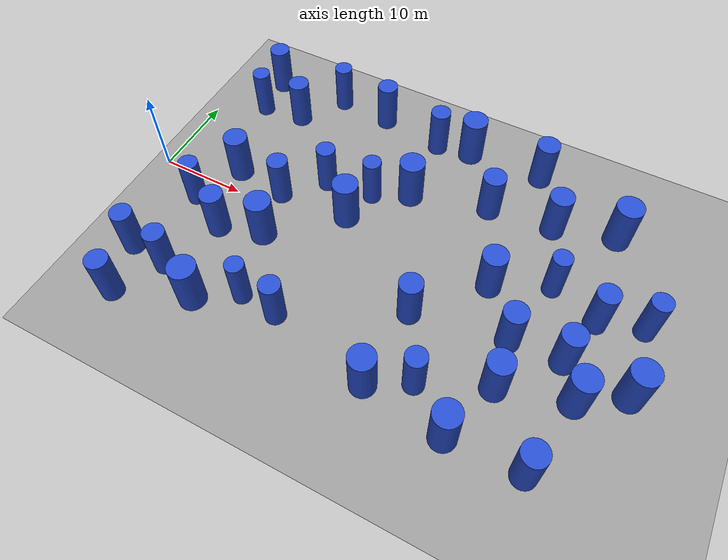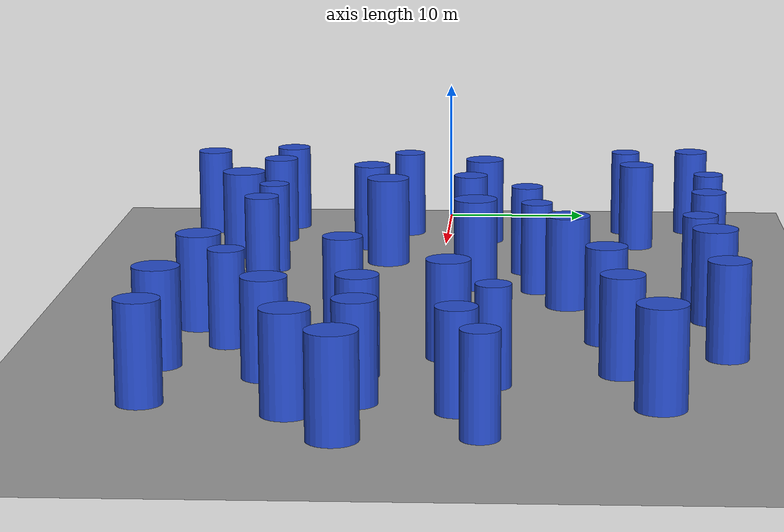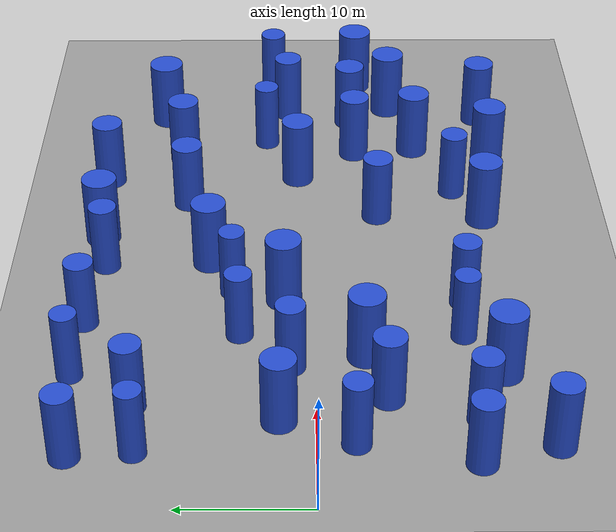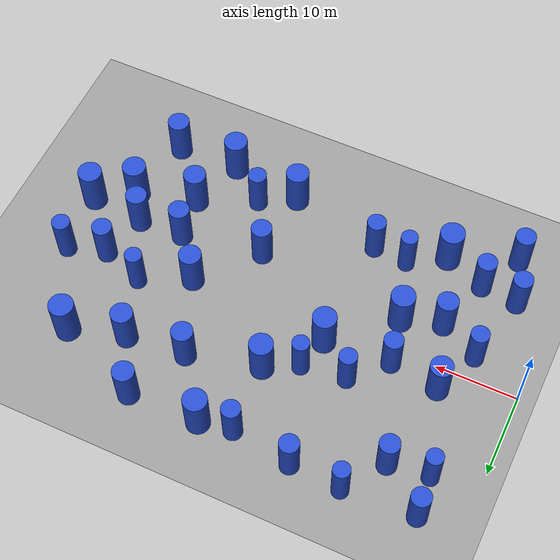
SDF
<sdf version="1.7">
 <world name="default">
  <model name="ground_plane_map">
   <static>1</static>
   <link name="link">
    <collision name="collision">
     <geometry><plane><normal>0 0 1</normal><size>110 50</size></plane></geometry>
     <surface>
      <contact><collide_without_contact>1</collide_without_contact></contact>
      <friction><ode><mu>100</mu><mu2>50</mu2></ode></friction>
     </surface>
    </collision>
    <visual name="visual">
     <cast_shadows>0</cast_shadows>
     <geometry><plane><normal>0 0 1</normal><size>110 50</size></plane></geometry>
     <material>
      <script><uri>file://media/materials/scripts/gazebo.material</uri><name>Gazebo/Grey</name></script>
     </material>
    </visual>
   </link>
   <pose>53 0 0 0 -0 0</pose>
  </model>
  <model name="0">
   <static>1</static>
   <link name="link">
    <inertial>
     <mass>2</mass>
     <inertia><ixx>6.95079</ixx><ixy>0</ixy><ixz>0</ixz><iyy>6.95079</iyy><iyz>0</iyz><izz>1.90158</izz></inertia>
    </inertial>
    <collision name="collision">
     <geometry><cylinder><length>6</length><radius>1.37898</radius></cylinder></geometry>
     <surface><contact><collide_without_contact>1</collide_without_contact></contact></surface>
    </collision>
    <visual name="visual">
     <geometry><cylinder><length>6</length><radius>1.37898</radius></cylinder></geometry>
     <material>
      <script><uri>file://media/materials/scripts/gazebo.material</uri><name>Gazebo/Blue</name></script>
     </material>
    </visual>
    <gravity>0</gravity>
   </link>
   <pose>45.2762 -8.97843 3 0 -0 0</pose>
  </model>
  <model name="6">
   <static>1</static>
   <link name="link">
    <inertial>
     <mass>2</mass>
     <inertia><ixx>6.55162</ixx><ixy>0</ixy><ixz>0</ixz><iyy>6.55162</iyy><iyz>0</iyz><izz>1.10324</izz></inertia>
    </inertial>
    <collision name="collision">
     <geometry><cylinder><length>6</length><radius>1.05035</radius></cylinder></geometry>
     <surface><contact><collide_without_contact>1</collide_without_contact></contact></surface>
    </collision>
    <visual name="visual">
     <geometry><cylinder><length>6</length><radius>1.05035</radius></cylinder></geometry>
     <material>
      <script><uri>file://media/materials/scripts/gazebo.material</uri><name>Gazebo/Blue</name></script>
     </material>
    </visual>
    <gravity>0</gravity>
   </link>
   <pose>46.5555 4.20254 3 0 -0 0</pose>
  </model>
  <model name="7">
   <static>1</static>
   <link name="link">
    <inertial>
     <mass>2</mass>
     <inertia><ixx>7.10009</ixx><ixy>0</ixy><ixz>0</ixz><iyy>7.10009</iyy><iyz>0</iyz><izz>2.20019</izz></inertia>
    </inertial>
    <collision name="collision">
     <geometry><cylinder><length>6</length><radius>1.4833</radius></cylinder></geometry>
     <surface><contact><collide_without_contact>1</collide_without_contact></contact></surface>
    </collision>
    <visual name="visual">
     <geometry><cylinder><length>6</length><radius>1.4833</radius></cylinder></geometry>
     <material>
      <script><uri>file://media/materials/scripts/gazebo.material</uri><name>Gazebo/Blue</name></script>
     </material>
    </visual>
    <gravity>0</gravity>
   </link>
   <pose>50.7692 13.5287 3 0 -0 0</pose>
  </model>
  <model name="11">
   <static>1</static>
   <link name="link">
    <inertial>
     <mass>2</mass>
     <inertia><ixx>7.02995</ixx><ixy>0</ixy><ixz>0</ixz><iyy>7.02995</iyy><iyz>0</iyz><izz>2.0599</izz></inertia>
    </inertial>
    <collision name="collision">
     <geometry><cylinder><length>6</length><radius>1.43524</radius></cylinder></geometry>
     <surface><contact><collide_without_contact>1</collide_without_contact></contact></surface>
    </collision>
    <visual name="visual">
     <geometry><cylinder><length>6</length><radius>1.43524</radius></cylinder></geometry>
     <material>
      <script><uri>file://media/materials/scripts/gazebo.material</uri><name>Gazebo/Blue</name></script>
     </material>
    </visual>
    <gravity>0</gravity>
   </link>
   <pose>22.9935 2.50664 3 0 -0 0</pose>
  </model>
  <model name="13">
   <static>1</static>
   <link name="link">
    <inertial>
     <mass>2</mass>
     <inertia><ixx>6.67283</ixx><ixy>0</ixy><ixz>0</ixz><iyy>6.67283</iyy><iyz>0</iyz><izz>1.34566</izz></inertia>
    </inertial>
    <collision name="collision">
     <geometry><cylinder><length>6</length><radius>1.16003</radius></cylinder></geometry>
     <surface><contact><collide_without_contact>1</collide_without_contact></contact></surface>
    </collision>
    <visual name="visual">
     <geometry><cylinder><length>6</length><radius>1.16003</radius></cylinder></geometry>
     <material>
      <script><uri>file://media/materials/scripts/gazebo.material</uri><name>Gazebo/Blue</name></script>
     </material>
    </visual>
    <gravity>0</gravity>
   </link>
   <pose>14.8128 1.93175 3 0 -0 0</pose>
  </model>
  <model name="16">
   <static>1</static>
   <link name="link">
    <inertial>
     <mass>2</mass>
     <inertia><ixx>6.6557</ixx><ixy>0</ixy><ixz>0</ixz><iyy>6.6557</iyy><iyz>0</iyz><izz>1.3114</izz></inertia>
    </inertial>
    <collision name="collision">
     <geometry><cylinder><length>6</length><radius>1.14516</radius></cylinder></geometry>
     <surface><contact><collide_without_contact>1</collide_without_contact></contact></surface>
    </collision>
    <visual name="visual">
     <geometry><cylinder><length>6</length><radius>1.14516</radius></cylinder></geometry>
     <material>
      <script><uri>file://media/materials/scripts/gazebo.material</uri><name>Gazebo/Blue</name></script>
     </material>
    </visual>
    <gravity>0</gravity>
   </link>
   <pose>22.6505 -11.8133 3 0 -0 0</pose>
  </model>
  <model name="17">
   <static>1</static>
   <link name="link">
    <inertial>
     <mass>2</mass>
     <inertia><ixx>6.88223</ixx><ixy>0</ixy><ixz>0</ixz><iyy>6.88223</iyy><iyz>0</iyz><izz>1.76446</izz></inertia>
    </inertial>
    <collision name="collision">
     <geometry><cylinder><length>6</length><radius>1.32833</radius></cylinder></geometry>
     <surface><contact><collide_without_contact>1</collide_without_contact></contact></surface>
    </collision>
    <visual name="visual">
     <geometry><cylinder><length>6</length><radius>1.32833</radius></cylinder></geometry>
     <material>
      <script><uri>file://media/materials/scripts/gazebo.material</uri><name>Gazebo/Blue</name></script>
     </material>
    </visual>
    <gravity>0</gravity>
   </link>
   <pose>50.7154 -15.3173 3 0 -0 0</pose>
  </model>
  <model name="19">
   <static>1</static>
   <link name="link">
    <inertial>
     <mass>2</mass>
     <inertia><ixx>7.06805</ixx><ixy>0</ixy><ixz>0</ixz><iyy>7.06805</iyy><iyz>0</iyz><izz>2.1361</izz></inertia>
    </inertial>
    <collision name="collision">
     <geometry><cylinder><length>6</length><radius>1.46154</radius></cylinder></geometry>
     <surface><contact><collide_without_contact>1</collide_without_contact></contact></surface>
    </collision>
    <visual name="visual">
     <geometry><cylinder><length>6</length><radius>1.46154</radius></cylinder></geometry>
     <material>
      <script><uri>file://media/materials/scripts/gazebo.material</uri><name>Gazebo/Blue</name></script>
     </material>
    </visual>
    <gravity>0</gravity>
   </link>
   <pose>56.9413 -4.03041 3 0 -0 0</pose>
  </model>
  <model name="22">
   <static>1</static>
   <link name="link">
    <inertial>
     <mass>2</mass>
     <inertia><ixx>7.01181</ixx><ixy>0</ixy><ixz>0</ixz><iyy>7.01181</iyy><iyz>0</iyz><izz>2.02362</izz></inertia>
    </inertial>
    <collision name="collision">
     <geometry><cylinder><length>6</length><radius>1.42254</radius></cylinder></geometry>
     <surface><contact><collide_without_contact>1</collide_without_contact></contact></surface>
    </collision>
    <visual name="visual">
     <geometry><cylinder><length>6</length><radius>1.42254</radius></cylinder></geometry>
     <material>
      <script><uri>file://media/materials/scripts/gazebo.material</uri><name>Gazebo/Blue</name></script>
     </material>
    </visual>
    <gravity>0</gravity>
   </link>
   <pose>28.0346 8.60096 3 0 -0 0</pose>
  </model>
  <model name="24">
   <static>1</static>
   <link name="link">
    <inertial>
     <mass>2</mass>
     <inertia><ixx>6.90968</ixx><ixy>0</ixy><ixz>0</ixz><iyy>6.90968</iyy><iyz>0</iyz><izz>1.81936</izz></inertia>
    </inertial>
    <collision name="collision">
     <geometry><cylinder><length>6</length><radius>1.34884</radius></cylinder></geometry>
     <surface><contact><collide_without_contact>1</collide_without_contact></contact></surface>
    </collision>
    <visual name="visual">
     <geometry><cylinder><length>6</length><radius>1.34884</radius></cylinder></geometry>
     <material>
      <script><uri>file://media/materials/scripts/gazebo.material</uri><name>Gazebo/Blue</name></script>
     </material>
    </visual>
    <gravity>0</gravity>
   </link>
   <pose>8.75022 2.75537 3 0 -0 0</pose>
  </model>
  <model name="26">
   <static>1</static>
   <link name="link">
    <inertial>
     <mass>2</mass>
     <inertia><ixx>6.84912</ixx><ixy>0</ixy><ixz>0</ixz><iyy>6.84912</iyy><iyz>0</iyz><izz>1.69825</izz></inertia>
    </inertial>
    <collision name="collision">
     <geometry><cylinder><length>6</length><radius>1.30317</radius></cylinder></geometry>
     <surface><contact><collide_without_contact>1</collide_without_contact></contact></surface>
    </collision>
    <visual name="visual">
     <geometry><cylinder><length>6</length><radius>1.30317</radius></cylinder></geometry>
     <material>
      <script><uri>file://media/materials/scripts/gazebo.material</uri><name>Gazebo/Blue</name></script>
     </material>
    </visual>
    <gravity>0</gravity>
   </link>
   <pose>40.3525 17.9683 3 0 -0 0</pose>
  </model>
  <model name="28">
   <static>1</static>
   <link name="link">
    <inertial>
     <mass>2</mass>
     <inertia><ixx>6.61083</ixx><ixy>0</ixy><ixz>0</ixz><iyy>6.61083</iyy><iyz>0</iyz><izz>1.22166</izz></inertia>
    </inertial>
    <collision name="collision">
     <geometry><cylinder><length>6</length><radius>1.10529</radius></cylinder></geometry>
     <surface><contact><collide_without_contact>1</collide_without_contact></contact></surface>
    </collision>
    <visual name="visual">
     <geometry><cylinder><length>6</length><radius>1.10529</radius></cylinder></geometry>
     <material>
      <script><uri>file://media/materials/scripts/gazebo.material</uri><name>Gazebo/Blue</name></script>
     </material>
    </visual>
    <gravity>0</gravity>
   </link>
   <pose>6.33318 -2.81082 3 0 -0 0</pose>
  </model>
  <model name="29">
   <static>1</static>
   <link name="link">
    <inertial>
     <mass>2</mass>
     <inertia><ixx>6.6384</ixx><ixy>0</ixy><ixz>0</ixz><iyy>6.6384</iyy><iyz>0</iyz><izz>1.27681</izz></inertia>
    </inertial>
    <collision name="collision">
     <geometry><cylinder><length>6</length><radius>1.12996</radius></cylinder></geometry>
     <surface><contact><collide_without_contact>1</collide_without_contact></contact></surface>
    </collision>
    <visual name="visual">
     <geometry><cylinder><length>6</length><radius>1.12996</radius></cylinder></geometry>
     <material>
      <script><uri>file://media/materials/scripts/gazebo.material</uri><name>Gazebo/Blue</name></script>
     </material>
    </visual>
    <gravity>0</gravity>
   </link>
   <pose>38.3677 -12.0648 3 0 -0 0</pose>
  </model>
  <model name="30">
   <static>1</static>
   <link name="link">
    <inertial>
     <mass>2</mass>
     <inertia><ixx>6.51988</ixx><ixy>0</ixy><ixz>0</ixz><iyy>6.51988</iyy><iyz>0</iyz><izz>1.03977</izz></inertia>
    </inertial>
    <collision name="collision">
     <geometry><cylinder><length>6</length><radius>1.01969</radius></cylinder></geometry>
     <surface><contact><collide_without_contact>1</collide_without_contact></contact></surface>
    </collision>
    <visual name="visual">
     <geometry><cylinder><length>6</length><radius>1.01969</radius></cylinder></geometry>
     <material>
      <script><uri>file://media/materials/scripts/gazebo.material</uri><name>Gazebo/Blue</name></script>
     </material>
    </visual>
    <gravity>0</gravity>
   </link>
   <pose>13.906 18.5337 3 0 -0 0</pose>
  </model>
  <model name="34">
   <static>1</static>
   <link name="link">
    <inertial>
     <mass>2</mass>
     <inertia><ixx>6.84292</ixx><ixy>0</ixy><ixz>0</ixz><iyy>6.84292</iyy><iyz>0</iyz><izz>1.68583</izz></inertia>
    </inertial>
    <collision name="collision">
     <geometry><cylinder><length>6</length><radius>1.2984</radius></cylinder></geometry>
     <surface><contact><collide_without_contact>1</collide_without_contact></contact></surface>
    </collision>
    <visual name="visual">
     <geometry><cylinder><length>6</length><radius>1.2984</radius></cylinder></geometry>
     <material>
      <script><uri>file://media/materials/scripts/gazebo.material</uri><name>Gazebo/Blue</name></script>
     </material>
    </visual>
    <gravity>0</gravity>
   </link>
   <pose>50.2362 -3.36983 3 0 -0 0</pose>
  </model>
  <model name="35">
   <static>1</static>
   <link name="link">
    <inertial>
     <mass>2</mass>
     <inertia><ixx>6.78663</ixx><ixy>0</ixy><ixz>0</ixz><iyy>6.78663</iyy><iyz>0</iyz><izz>1.57327</izz></inertia>
    </inertial>
    <collision name="collision">
     <geometry><cylinder><length>6</length><radius>1.2543</radius></cylinder></geometry>
     <surface><contact><collide_without_contact>1</collide_without_contact></contact></surface>
    </collision>
    <visual name="visual">
     <geometry><cylinder><length>6</length><radius>1.2543</radius></cylinder></geometry>
     <material>
      <script><uri>file://media/materials/scripts/gazebo.material</uri><name>Gazebo/Blue</name></script>
     </material>
    </visual>
    <gravity>0</gravity>
   </link>
   <pose>34.6176 -5.35558 3 0 -0 0</pose>
  </model>
  <model name="37">
   <static>1</static>
   <link name="link">
    <inertial>
     <mass>2</mass>
     <inertia><ixx>6.6503</ixx><ixy>0</ixy><ixz>0</ixz><iyy>6.6503</iyy><iyz>0</iyz><izz>1.30061</izz></inertia>
    </inertial>
    <collision name="collision">
     <geometry><cylinder><length>6</length><radius>1.14044</radius></cylinder></geometry>
     <surface><contact><collide_without_contact>1</collide_without_contact></contact></surface>
    </collision>
    <visual name="visual">
     <geometry><cylinder><length>6</length><radius>1.14044</radius></cylinder></geometry>
     <material>
      <script><uri>file://media/materials/scripts/gazebo.material</uri><name>Gazebo/Blue</name></script>
     </material>
    </visual>
    <gravity>0</gravity>
   </link>
   <pose>27.6058 17.0916 3 0 -0 0</pose>
  </model>
  <model name="39">
   <static>1</static>
   <link name="link">
    <inertial>
     <mass>2</mass>
     <inertia><ixx>6.71283</ixx><ixy>0</ixy><ixz>0</ixz><iyy>6.71283</iyy><iyz>0</iyz><izz>1.42566</izz></inertia>
    </inertial>
    <collision name="collision">
     <geometry><cylinder><length>6</length><radius>1.19401</radius></cylinder></geometry>
     <surface><contact><collide_without_contact>1</collide_without_contact></contact></surface>
    </collision>
    <visual name="visual">
     <geometry><cylinder><length>6</length><radius>1.19401</radius></cylinder></geometry>
     <material>
      <script><uri>file://media/materials/scripts/gazebo.material</uri><name>Gazebo/Blue</name></script>
     </material>
    </visual>
    <gravity>0</gravity>
   </link>
   <pose>4.34279 -11.5728 3 0 -0 0</pose>
  </model>
  <model name="41">
   <static>1</static>
   <link name="link">
    <inertial>
     <mass>2</mass>
     <inertia><ixx>6.82443</ixx><ixy>0</ixy><ixz>0</ixz><iyy>6.82443</iyy><iyz>0</iyz><izz>1.64885</izz></inertia>
    </inertial>
    <collision name="collision">
     <geometry><cylinder><length>6</length><radius>1.28408</radius></cylinder></geometry>
     <surface><contact><collide_without_contact>1</collide_without_contact></contact></surface>
    </collision>
    <visual name="visual">
     <geometry><cylinder><length>6</length><radius>1.28408</radius></cylinder></geometry>
     <material>
      <script><uri>file://media/materials/scripts/gazebo.material</uri><name>Gazebo/Blue</name></script>
     </material>
    </visual>
    <gravity>0</gravity>
   </link>
   <pose>44.6605 -3.65832 3 0 -0 0</pose>
  </model>
  <model name="42">
   <static>1</static>
   <link name="link">
    <inertial>
     <mass>2</mass>
     <inertia><ixx>6.73098</ixx><ixy>0</ixy><ixz>0</ixz><iyy>6.73098</iyy><iyz>0</iyz><izz>1.46195</izz></inertia>
    </inertial>
    <collision name="collision">
     <geometry><cylinder><length>6</length><radius>1.20911</radius></cylinder></geometry>
     <surface><contact><collide_without_contact>1</collide_without_contact></contact></surface>
    </collision>
    <visual name="visual">
     <geometry><cylinder><length>6</length><radius>1.20911</radius></cylinder></geometry>
     <material>
      <script><uri>file://media/materials/scripts/gazebo.material</uri><name>Gazebo/Blue</name></script>
     </material>
    </visual>
    <gravity>0</gravity>
   </link>
   <pose>51.7574 2.30771 3 0 -0 0</pose>
  </model>
  <model name="43">
   <static>1</static>
   <link name="link">
    <inertial>
     <mass>2</mass>
     <inertia><ixx>7.03959</ixx><ixy>0</ixy><ixz>0</ixz><iyy>7.03959</iyy><iyz>0</iyz><izz>2.07918</izz></inertia>
    </inertial>
    <collision name="collision">
     <geometry><cylinder><length>6</length><radius>1.44194</radius></cylinder></geometry>
     <surface><contact><collide_without_contact>1</collide_without_contact></contact></surface>
    </collision>
    <visual name="visual">
     <geometry><cylinder><length>6</length><radius>1.44194</radius></cylinder></geometry>
     <material>
      <script><uri>file://media/materials/scripts/gazebo.material</uri><name>Gazebo/Blue</name></script>
     </material>
    </visual>
    <gravity>0</gravity>
   </link>
   <pose>52.4739 -6.97567 3 0 -0 0</pose>
  </model>
  <model name="46">
   <static>1</static>
   <link name="link">
    <inertial>
     <mass>2</mass>
     <inertia><ixx>7.11514</ixx><ixy>0</ixy><ixz>0</ixz><iyy>7.11514</iyy><iyz>0</iyz><izz>2.23028</izz></inertia>
    </inertial>
    <collision name="collision">
     <geometry><cylinder><length>6</length><radius>1.49341</radius></cylinder></geometry>
     <surface><contact><collide_without_contact>1</collide_without_contact></contact></surface>
    </collision>
    <visual name="visual">
     <geometry><cylinder><length>6</length><radius>1.49341</radius></cylinder></geometry>
     <material>
      <script><uri>file://media/materials/scripts/gazebo.material</uri><name>Gazebo/Blue</name></script>
     </material>
    </visual>
    <gravity>0</gravity>
   </link>
   <pose>13.9798 -14.1056 3 0 -0 0</pose>
  </model>
  <model name="47">
   <static>1</static>
   <link name="link">
    <inertial>
     <mass>2</mass>
     <inertia><ixx>7.03224</ixx><ixy>0</ixy><ixz>0</ixz><iyy>7.03224</iyy><iyz>0</iyz><izz>2.06447</izz></inertia>
    </inertial>
    <collision name="collision">
     <geometry><cylinder><length>6</length><radius>1.43683</radius></cylinder></geometry>
     <surface><contact><collide_without_contact>1</collide_without_contact></contact></surface>
    </collision>
    <visual name="visual">
     <geometry><cylinder><length>6</length><radius>1.43683</radius></cylinder></geometry>
     <material>
      <script><uri>file://media/materials/scripts/gazebo.material</uri><name>Gazebo/Blue</name></script>
     </material>
    </visual>
    <gravity>0</gravity>
   </link>
   <pose>31.6305 17.7655 3 0 -0 0</pose>
  </model>
  <model name="48">
   <static>1</static>
   <link name="link">
    <inertial>
     <mass>2</mass>
     <inertia><ixx>7.01812</ixx><ixy>0</ixy><ixz>0</ixz><iyy>7.01812</iyy><iyz>0</iyz><izz>2.03624</izz></inertia>
    </inertial>
    <collision name="collision">
     <geometry><cylinder><length>6</length><radius>1.42697</radius></cylinder></geometry>
     <surface><contact><collide_without_contact>1</collide_without_contact></contact></surface>
    </collision>
    <visual name="visual">
     <geometry><cylinder><length>6</length><radius>1.42697</radius></cylinder></geometry>
     <material>
      <script><uri>file://media/materials/scripts/gazebo.material</uri><name>Gazebo/Blue</name></script>
     </material>
    </visual>
    <gravity>0</gravity>
   </link>
   <pose>42.9644 -15.5514 3 0 -0 0</pose>
  </model>
  <model name="49">
   <static>1</static>
   <link name="link">
    <inertial>
     <mass>2</mass>
     <inertia><ixx>6.75214</ixx><ixy>0</ixy><ixz>0</ixz><iyy>6.75214</iyy><iyz>0</iyz><izz>1.50428</izz></inertia>
    </inertial>
    <collision name="collision">
     <geometry><cylinder><length>6</length><radius>1.22649</radius></cylinder></geometry>
     <surface><contact><collide_without_contact>1</collide_without_contact></contact></surface>
    </collision>
    <visual name="visual">
     <geometry><cylinder><length>6</length><radius>1.22649</radius></cylinder></geometry>
     <material>
      <script><uri>file://media/materials/scripts/gazebo.material</uri><name>Gazebo/Blue</name></script>
     </material>
    </visual>
    <gravity>0</gravity>
   </link>
   <pose>6.03836 -17.2467 3 0 -0 0</pose>
  </model>
  <model name="52">
   <static>1</static>
   <link name="link">
    <inertial>
     <mass>2</mass>
     <inertia><ixx>6.91961</ixx><ixy>0</ixy><ixz>0</ixz><iyy>6.91961</iyy><iyz>0</iyz><izz>1.83922</izz></inertia>
    </inertial>
    <collision name="collision">
     <geometry><cylinder><length>6</length><radius>1.35618</radius></cylinder></geometry>
     <surface><contact><collide_without_contact>1</collide_without_contact></contact></surface>
    </collision>
    <visual name="visual">
     <geometry><cylinder><length>6</length><radius>1.35618</radius></cylinder></geometry>
     <material>
      <script><uri>file://media/materials/scripts/gazebo.material</uri><name>Gazebo/Blue</name></script>
     </material>
    </visual>
    <gravity>0</gravity>
   </link>
   <pose>40.5909 1.41427 3 0 -0 0</pose>
  </model>
  <model name="53">
   <static>1</static>
   <link name="link">
    <inertial>
     <mass>2</mass>
     <inertia><ixx>6.83665</ixx><ixy>0</ixy><ixz>0</ixz><iyy>6.83665</iyy><iyz>0</iyz><izz>1.6733</izz></inertia>
    </inertial>
    <collision name="collision">
     <geometry><cylinder><length>6</length><radius>1.29356</radius></cylinder></geometry>
     <surface><contact><collide_without_contact>1</collide_without_contact></contact></surface>
    </collision>
    <visual name="visual">
     <geometry><cylinder><length>6</length><radius>1.29356</radius></cylinder></geometry>
     <material>
      <script><uri>file://media/materials/scripts/gazebo.material</uri><name>Gazebo/Blue</name></script>
     </material>
    </visual>
    <gravity>0</gravity>
   </link>
   <pose>36.7718 10.8356 3 0 -0 0</pose>
  </model>
  <model name="54">
   <static>1</static>
   <link name="link">
    <inertial>
     <mass>2</mass>
     <inertia><ixx>6.68343</ixx><ixy>0</ixy><ixz>0</ixz><iyy>6.68343</iyy><iyz>0</iyz><izz>1.36686</izz></inertia>
    </inertial>
    <collision name="collision">
     <geometry><cylinder><length>6</length><radius>1.16913</radius></cylinder></geometry>
     <surface><contact><collide_without_contact>1</collide_without_contact></contact></surface>
    </collision>
    <visual name="visual">
     <geometry><cylinder><length>6</length><radius>1.16913</radius></cylinder></geometry>
     <material>
      <script><uri>file://media/materials/scripts/gazebo.material</uri><name>Gazebo/Blue</name></script>
     </material>
    </visual>
    <gravity>0</gravity>
   </link>
   <pose>20.172 18.1497 3 0 -0 0</pose>
  </model>
  <model name="55">
   <static>1</static>
   <link name="link">
    <inertial>
     <mass>2</mass>
     <inertia><ixx>6.71688</ixx><ixy>0</ixy><ixz>0</ixz><iyy>6.71688</iyy><iyz>0</iyz><izz>1.43376</izz></inertia>
    </inertial>
    <collision name="collision">
     <geometry><cylinder><length>6</length><radius>1.1974</radius></cylinder></geometry>
     <surface><contact><collide_without_contact>1</collide_without_contact></contact></surface>
    </collision>
    <visual name="visual">
     <geometry><cylinder><length>6</length><radius>1.1974</radius></cylinder></geometry>
     <material>
      <script><uri>file://media/materials/scripts/gazebo.material</uri><name>Gazebo/Blue</name></script>
     </material>
    </visual>
    <gravity>0</gravity>
   </link>
   <pose>8.90747 -12.0492 3 0 -0 0</pose>
  </model>
  <model name="59">
   <static>1</static>
   <link name="link">
    <inertial>
     <mass>2</mass>
     <inertia><ixx>6.71629</ixx><ixy>0</ixy><ixz>0</ixz><iyy>6.71629</iyy><iyz>0</iyz><izz>1.43258</izz></inertia>
    </inertial>
    <collision name="collision">
     <geometry><cylinder><length>6</length><radius>1.1969</radius></cylinder></geometry>
     <surface><contact><collide_without_contact>1</collide_without_contact></contact></surface>
    </collision>
    <visual name="visual">
     <geometry><cylinder><length>6</length><radius>1.1969</radius></cylinder></geometry>
     <material>
      <script><uri>file://media/materials/scripts/gazebo.material</uri><name>Gazebo/Blue</name></script>
     </material>
    </visual>
    <gravity>0</gravity>
   </link>
   <pose>10.4298 13.6728 3 0 -0 0</pose>
  </model>
  <model name="60">
   <static>1</static>
   <link name="link">
    <inertial>
     <mass>2</mass>
     <inertia><ixx>7.05343</ixx><ixy>0</ixy><ixz>0</ixz><iyy>7.05343</iyy><iyz>0</iyz><izz>2.10687</izz></inertia>
    </inertial>
    <collision name="collision">
     <geometry><cylinder><length>6</length><radius>1.45151</radius></cylinder></geometry>
     <surface><contact><collide_without_contact>1</collide_without_contact></contact></surface>
    </collision>
    <visual name="visual">
     <geometry><cylinder><length>6</length><radius>1.45151</radius></cylinder></geometry>
     <material>
      <script><uri>file://media/materials/scripts/gazebo.material</uri><name>Gazebo/Blue</name></script>
     </material>
    </visual>
    <gravity>0</gravity>
   </link>
   <pose>15.9973 -3.78561 3 0 -0 0</pose>
  </model>
  <model name="61">
   <static>1</static>
   <link name="link">
    <inertial>
     <mass>2</mass>
     <inertia><ixx>6.52127</ixx><ixy>0</ixy><ixz>0</ixz><iyy>6.52127</iyy><iyz>0</iyz><izz>1.04254</izz></inertia>
    </inertial>
    <collision name="collision">
     <geometry><cylinder><length>6</length><radius>1.02105</radius></cylinder></geometry>
     <surface><contact><collide_without_contact>1</collide_without_contact></contact></surface>
    </collision>
    <visual name="visual">
     <geometry><cylinder><length>6</length><radius>1.02105</radius></cylinder></geometry>
     <material>
      <script><uri>file://media/materials/scripts/gazebo.material</uri><name>Gazebo/Blue</name></script>
     </material>
    </visual>
    <gravity>0</gravity>
   </link>
   <pose>18.3576 -11.4644 3 0 -0 0</pose>
  </model>
  <model name="65">
   <static>1</static>
   <link name="link">
    <inertial>
     <mass>2</mass>
     <inertia><ixx>6.52052</ixx><ixy>0</ixy><ixz>0</ixz><iyy>6.52052</iyy><iyz>0</iyz><izz>1.04104</izz></inertia>
    </inertial>
    <collision name="collision">
     <geometry><cylinder><length>6</length><radius>1.02032</radius></cylinder></geometry>
     <surface><contact><collide_without_contact>1</collide_without_contact></contact></surface>
    </collision>
    <visual name="visual">
     <geometry><cylinder><length>6</length><radius>1.02032</radius></cylinder></geometry>
     <material>
      <script><uri>file://media/materials/scripts/gazebo.material</uri><name>Gazebo/Blue</name></script>
     </material>
    </visual>
    <gravity>0</gravity>
   </link>
   <pose>5.51764 13.0563 3 0 -0 0</pose>
  </model>
  <model name="66">
   <static>1</static>
   <link name="link">
    <inertial>
     <mass>2</mass>
     <inertia><ixx>6.58357</ixx><ixy>0</ixy><ixz>0</ixz><iyy>6.58357</iyy><iyz>0</iyz><izz>1.16715</izz></inertia>
    </inertial>
    <collision name="collision">
     <geometry><cylinder><length>6</length><radius>1.08035</radius></cylinder></geometry>
     <surface><contact><collide_without_contact>1</collide_without_contact></contact></surface>
    </collision>
    <visual name="visual">
     <geometry><cylinder><length>6</length><radius>1.08035</radius></cylinder></geometry>
     <material>
      <script><uri>file://media/materials/scripts/gazebo.material</uri><name>Gazebo/Blue</name></script>
     </material>
    </visual>
    <gravity>0</gravity>
   </link>
   <pose>18.6407 5.9061 3 0 -0 0</pose>
  </model>
  <model name="69">
   <static>1</static>
   <link name="link">
    <inertial>
     <mass>2</mass>
     <inertia><ixx>6.60836</ixx><ixy>0</ixy><ixz>0</ixz><iyy>6.60836</iyy><iyz>0</iyz><izz>1.21672</izz></inertia>
    </inertial>
    <collision name="collision">
     <geometry><cylinder><length>6</length><radius>1.10305</radius></cylinder></geometry>
     <surface><contact><collide_without_contact>1</collide_without_contact></contact></surface>
    </collision>
    <visual name="visual">
     <geometry><cylinder><length>6</length><radius>1.10305</radius></cylinder></geometry>
     <material>
      <script><uri>file://media/materials/scripts/gazebo.material</uri><name>Gazebo/Blue</name></script>
     </material>
    </visual>
    <gravity>0</gravity>
   </link>
   <pose>56.4635 3.72702 3 0 -0 0</pose>
  </model>
  <model name="71">
   <static>1</static>
   <link name="link">
    <inertial>
     <mass>2</mass>
     <inertia><ixx>6.88245</ixx><ixy>0</ixy><ixz>0</ixz><iyy>6.88245</iyy><iyz>0</iyz><izz>1.76489</izz></inertia>
    </inertial>
    <collision name="collision">
     <geometry><cylinder><length>6</length><radius>1.32849</radius></cylinder></geometry>
     <surface><contact><collide_without_contact>1</collide_without_contact></contact></surface>
    </collision>
    <visual name="visual">
     <geometry><cylinder><length>6</length><radius>1.32849</radius></cylinder></geometry>
     <material>
      <script><uri>file://media/materials/scripts/gazebo.material</uri><name>Gazebo/Blue</name></script>
     </material>
    </visual>
    <gravity>0</gravity>
   </link>
   <pose>44.0516 11.5777 3 0 -0 0</pose>
  </model>
  <model name="75">
   <static>1</static>
   <link name="link">
    <inertial>
     <mass>2</mass>
     <inertia><ixx>6.99362</ixx><ixy>0</ixy><ixz>0</ixz><iyy>6.99362</iyy><iyz>0</iyz><izz>1.98725</izz></inertia>
    </inertial>
    <collision name="collision">
     <geometry><cylinder><length>6</length><radius>1.4097</radius></cylinder></geometry>
     <surface><contact><collide_without_contact>1</collide_without_contact></contact></surface>
    </collision>
    <visual name="visual">
     <geometry><cylinder><length>6</length><radius>1.4097</radius></cylinder></geometry>
     <material>
      <script><uri>file://media/materials/scripts/gazebo.material</uri><name>Gazebo/Blue</name></script>
     </material>
    </visual>
    <gravity>0</gravity>
   </link>
   <pose>34.0801 -14.3724 3 0 -0 0</pose>
  </model>
  <model name="76">
   <static>1</static>
   <link name="link">
    <inertial>
     <mass>2</mass>
     <inertia><ixx>6.82305</ixx><ixy>0</ixy><ixz>0</ixz><iyy>6.82305</iyy><iyz>0</iyz><izz>1.64611</izz></inertia>
    </inertial>
    <collision name="collision">
     <geometry><cylinder><length>6</length><radius>1.28301</radius></cylinder></geometry>
     <surface><contact><collide_without_contact>1</collide_without_contact></contact></surface>
    </collision>
    <visual name="visual">
     <geometry><cylinder><length>6</length><radius>1.28301</radius></cylinder></geometry>
     <material>
      <script><uri>file://media/materials/scripts/gazebo.material</uri><name>Gazebo/Blue</name></script>
     </material>
    </visual>
    <gravity>0</gravity>
   </link>
   <pose>11.1355 -5.26871 3 0 -0 0</pose>
  </model>
  <model name="77">
   <static>1</static>
   <link name="link">
    <inertial>
     <mass>2</mass>
     <inertia><ixx>6.68907</ixx><ixy>0</ixy><ixz>0</ixz><iyy>6.68907</iyy><iyz>0</iyz><izz>1.37813</izz></inertia>
    </inertial>
    <collision name="collision">
     <geometry><cylinder><length>6</length><radius>1.17394</radius></cylinder></geometry>
     <surface><contact><collide_without_contact>1</collide_without_contact></contact></surface>
    </collision>
    <visual name="visual">
     <geometry><cylinder><length>6</length><radius>1.17394</radius></cylinder></geometry>
     <material>
      <script><uri>file://media/materials/scripts/gazebo.material</uri><name>Gazebo/Blue</name></script>
     </material>
    </visual>
    <gravity>0</gravity>
   </link>
   <pose>5.14697 17.8593 3 0 -0 0</pose>
  </model>
  <model name="78">
   <static>1</static>
   <link name="link">
    <inertial>
     <mass>2</mass>
     <inertia><ixx>6.53588</ixx><ixy>0</ixy><ixz>0</ixz><iyy>6.53588</iyy><iyz>0</iyz><izz>1.07176</izz></inertia>
    </inertial>
    <collision name="collision">
     <geometry><cylinder><length>6</length><radius>1.03526</radius></cylinder></geometry>
     <surface><contact><collide_without_contact>1</collide_without_contact></contact></surface>
    </collision>
    <visual name="visual">
     <geometry><cylinder><length>6</length><radius>1.03526</radius></cylinder></geometry>
     <material>
      <script><uri>file://media/materials/scripts/gazebo.material</uri><name>Gazebo/Blue</name></script>
     </material>
    </visual>
    <gravity>0</gravity>
   </link>
   <pose>24.0903 6.59059 3 0 -0 0</pose>
  </model>
 </world>
</sdf>
